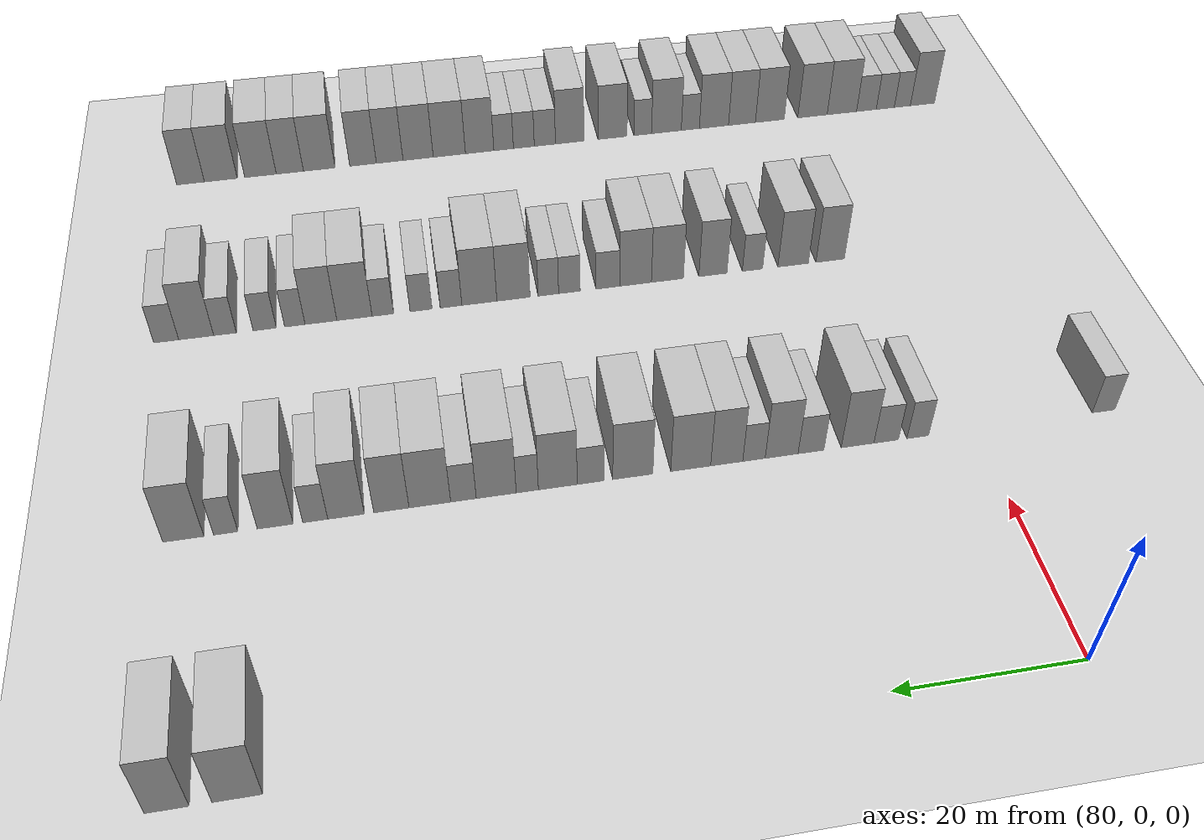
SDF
<sdf version="1.6">
 <world name="default">
  <include>
   <name>ground_plane_2</name>
   <uri>model://HANNAS_ground_plane</uri>
   <pose>100 0 0  0 0 0</pose>
  </include>
  <model name="building_587">
   <static>1</static>
   <pose>85.0000 81.4156 0 0.000000 0.000000 0.000000</pose>
   <link name="link">
    <pose>0 0 4.50 0 0 0</pose>
    <collision name="collision"><geometry><box><size>10.0000 4.4955 9.0000</size></box></geometry></collision>
    <visual name="visual">
     <cast_shadows>0</cast_shadows>
     <geometry><box><size>10.0000 4.4955 9.0000</size></box></geometry>
     <material>
      <script>
       <uri>model://HANNAS_wall/materials/scripts</uri>
       <uri>model://HANNAS_wall/materials/textures</uri>
       <name>vrc/HANNAS_wall</name>
      </script>
     </material>
    </visual>
   </link>
  </model>
  <model name="building_588">
   <static>1</static>
   <pose>85.0000 87.6279 0 0.000000 0.000000 0.000000</pose>
   <link name="link">
    <pose>0 0 4.50 0 0 0</pose>
    <collision name="collision"><geometry><box><size>10.0000 3.9290 9.0000</size></box></geometry></collision>
    <visual name="visual">
     <cast_shadows>0</cast_shadows>
     <geometry><box><size>10.0000 3.9290 9.0000</size></box></geometry>
     <material>
      <script>
       <uri>model://HANNAS_wall/materials/scripts</uri>
       <uri>model://HANNAS_wall/materials/textures</uri>
       <name>vrc/HANNAS_wall</name>
      </script>
     </material>
    </visual>
   </link>
  </model>
  <model name="building_790">
   <static>1</static>
   <pose>115.0000 -15.3438 0 0.000000 0.000000 0.000000</pose>
   <link name="link">
    <pose>0 0 3.00 0 0 0</pose>
    <collision name="collision"><geometry><box><size>10.0000 2.7473 6.0000</size></box></geometry></collision>
    <visual name="visual">
     <cast_shadows>0</cast_shadows>
     <geometry><box><size>10.0000 2.7473 6.0000</size></box></geometry>
     <material>
      <script>
       <uri>model://HANNAS_wall/materials/scripts</uri>
       <uri>model://HANNAS_wall/materials/textures</uri>
       <name>vrc/HANNAS_wall</name>
      </script>
     </material>
    </visual>
   </link>
  </model>
  <model name="building_791">
   <static>1</static>
   <pose>115.0000 6.8169 0 0.000000 0.000000 0.000000</pose>
   <link name="link">
    <pose>0 0 3.00 0 0 0</pose>
    <collision name="collision"><geometry><box><size>10.0000 2.5247 6.0000</size></box></geometry></collision>
    <visual name="visual">
     <cast_shadows>0</cast_shadows>
     <geometry><box><size>10.0000 2.5247 6.0000</size></box></geometry>
     <material>
      <script>
       <uri>model://HANNAS_wall/materials/scripts</uri>
       <uri>model://HANNAS_wall/materials/textures</uri>
       <name>vrc/HANNAS_wall</name>
      </script>
     </material>
    </visual>
   </link>
  </model>
  <model name="building_792">
   <static>1</static>
   <pose>115.0000 10.5102 0 0.000000 0.000000 0.000000</pose>
   <link name="link">
    <pose>0 0 3.00 0 0 0</pose>
    <collision name="collision"><geometry><box><size>10.0000 2.8619 6.0000</size></box></geometry></collision>
    <visual name="visual">
     <cast_shadows>0</cast_shadows>
     <geometry><box><size>10.0000 2.8619 6.0000</size></box></geometry>
     <material>
      <script>
       <uri>model://HANNAS_wall/materials/scripts</uri>
       <uri>model://HANNAS_wall/materials/textures</uri>
       <name>vrc/HANNAS_wall</name>
      </script>
     </material>
    </visual>
   </link>
  </model>
  <model name="building_793">
   <static>1</static>
   <pose>115.0000 13.8330 0 0.000000 0.000000 0.000000</pose>
   <link name="link">
    <pose>0 0 4.50 0 0 0</pose>
    <collision name="collision"><geometry><box><size>10.0000 3.7837 9.0000</size></box></geometry></collision>
    <visual name="visual">
     <cast_shadows>0</cast_shadows>
     <geometry><box><size>10.0000 3.7837 9.0000</size></box></geometry>
     <material>
      <script>
       <uri>model://HANNAS_wall/materials/scripts</uri>
       <uri>model://HANNAS_wall/materials/textures</uri>
       <name>vrc/HANNAS_wall</name>
      </script>
     </material>
    </visual>
   </link>
  </model>
  <model name="building_794">
   <static>1</static>
   <pose>115.0000 19.2060 0 0.000000 0.000000 0.000000</pose>
   <link name="link">
    <pose>0 0 3.00 0 0 0</pose>
    <collision name="collision"><geometry><box><size>10.0000 2.9624 6.0000</size></box></geometry></collision>
    <visual name="visual">
     <cast_shadows>0</cast_shadows>
     <geometry><box><size>10.0000 2.9624 6.0000</size></box></geometry>
     <material>
      <script>
       <uri>model://HANNAS_wall/materials/scripts</uri>
       <uri>model://HANNAS_wall/materials/textures</uri>
       <name>vrc/HANNAS_wall</name>
      </script>
     </material>
    </visual>
   </link>
  </model>
  <model name="building_795">
   <static>1</static>
   <pose>115.0000 22.5663 0 0.000000 0.000000 0.000000</pose>
   <link name="link">
    <pose>0 0 4.50 0 0 0</pose>
    <collision name="collision"><geometry><box><size>10.0000 3.7582 9.0000</size></box></geometry></collision>
    <visual name="visual">
     <cast_shadows>0</cast_shadows>
     <geometry><box><size>10.0000 3.7582 9.0000</size></box></geometry>
     <material>
      <script>
       <uri>model://HANNAS_wall/materials/scripts</uri>
       <uri>model://HANNAS_wall/materials/textures</uri>
       <name>vrc/HANNAS_wall</name>
      </script>
     </material>
    </visual>
   </link>
  </model>
  <model name="building_796">
   <static>1</static>
   <pose>115.0000 25.7191 0 0.000000 0.000000 0.000000</pose>
   <link name="link">
    <pose>0 0 3.00 0 0 0</pose>
    <collision name="collision"><geometry><box><size>10.0000 2.5474 6.0000</size></box></geometry></collision>
    <visual name="visual">
     <cast_shadows>0</cast_shadows>
     <geometry><box><size>10.0000 2.5474 6.0000</size></box></geometry>
     <material>
      <script>
       <uri>model://HANNAS_wall/materials/scripts</uri>
       <uri>model://HANNAS_wall/materials/textures</uri>
       <name>vrc/HANNAS_wall</name>
      </script>
     </material>
    </visual>
   </link>
  </model>
  <model name="building_797">
   <static>1</static>
   <pose>115.0000 28.8067 0 0.000000 0.000000 0.000000</pose>
   <link name="link">
    <pose>0 0 4.50 0 0 0</pose>
    <collision name="collision"><geometry><box><size>10.0000 3.6279 9.0000</size></box></geometry></collision>
    <visual name="visual">
     <cast_shadows>0</cast_shadows>
     <geometry><box><size>10.0000 3.6279 9.0000</size></box></geometry>
     <material>
      <script>
       <uri>model://HANNAS_wall/materials/scripts</uri>
       <uri>model://HANNAS_wall/materials/textures</uri>
       <name>vrc/HANNAS_wall</name>
      </script>
     </material>
    </visual>
   </link>
  </model>
  <model name="building_798">
   <static>1</static>
   <pose>115.0000 32.8637 0 0.000000 0.000000 0.000000</pose>
   <link name="link">
    <pose>0 0 4.50 0 0 0</pose>
    <collision name="collision"><geometry><box><size>10.0000 4.4861 9.0000</size></box></geometry></collision>
    <visual name="visual">
     <cast_shadows>0</cast_shadows>
     <geometry><box><size>10.0000 4.4861 9.0000</size></box></geometry>
     <material>
      <script>
       <uri>model://HANNAS_wall/materials/scripts</uri>
       <uri>model://HANNAS_wall/materials/textures</uri>
       <name>vrc/HANNAS_wall</name>
      </script>
     </material>
    </visual>
   </link>
  </model>
  <model name="building_799">
   <static>1</static>
   <pose>115.0000 39.3338 0 0.000000 0.000000 0.000000</pose>
   <link name="link">
    <pose>0 0 4.50 0 0 0</pose>
    <collision name="collision"><geometry><box><size>10.0000 4.4540 9.0000</size></box></geometry></collision>
    <visual name="visual">
     <cast_shadows>0</cast_shadows>
     <geometry><box><size>10.0000 4.4540 9.0000</size></box></geometry>
     <material>
      <script>
       <uri>model://HANNAS_wall/materials/scripts</uri>
       <uri>model://HANNAS_wall/materials/textures</uri>
       <name>vrc/HANNAS_wall</name>
      </script>
     </material>
    </visual>
   </link>
  </model>
  <model name="building_800">
   <static>1</static>
   <pose>115.0000 44.0183 0 0.000000 0.000000 0.000000</pose>
   <link name="link">
    <pose>0 0 3.00 0 0 0</pose>
    <collision name="collision"><geometry><box><size>10.0000 2.9150 6.0000</size></box></geometry></collision>
    <visual name="visual">
     <cast_shadows>0</cast_shadows>
     <geometry><box><size>10.0000 2.9150 6.0000</size></box></geometry>
     <material>
      <script>
       <uri>model://HANNAS_wall/materials/scripts</uri>
       <uri>model://HANNAS_wall/materials/textures</uri>
       <name>vrc/HANNAS_wall</name>
      </script>
     </material>
    </visual>
   </link>
  </model>
  <model name="building_801">
   <static>1</static>
   <pose>115.0000 47.6013 0 0.000000 0.000000 0.000000</pose>
   <link name="link">
    <pose>0 0 4.50 0 0 0</pose>
    <collision name="collision"><geometry><box><size>10.0000 4.2510 9.0000</size></box></geometry></collision>
    <visual name="visual">
     <cast_shadows>0</cast_shadows>
     <geometry><box><size>10.0000 4.2510 9.0000</size></box></geometry>
     <material>
      <script>
       <uri>model://HANNAS_wall/materials/scripts</uri>
       <uri>model://HANNAS_wall/materials/textures</uri>
       <name>vrc/HANNAS_wall</name>
      </script>
     </material>
    </visual>
   </link>
  </model>
  <model name="building_802">
   <static>1</static>
   <pose>115.0000 50.9356 0 0.000000 0.000000 0.000000</pose>
   <link name="link">
    <pose>0 0 3.00 0 0 0</pose>
    <collision name="collision"><geometry><box><size>10.0000 2.4177 6.0000</size></box></geometry></collision>
    <visual name="visual">
     <cast_shadows>0</cast_shadows>
     <geometry><box><size>10.0000 2.4177 6.0000</size></box></geometry>
     <material>
      <script>
       <uri>model://HANNAS_wall/materials/scripts</uri>
       <uri>model://HANNAS_wall/materials/textures</uri>
       <name>vrc/HANNAS_wall</name>
      </script>
     </material>
    </visual>
   </link>
  </model>
  <model name="building_803">
   <static>1</static>
   <pose>115.0000 54.3118 0 0.000000 0.000000 0.000000</pose>
   <link name="link">
    <pose>0 0 4.50 0 0 0</pose>
    <collision name="collision"><geometry><box><size>10.0000 4.3348 9.0000</size></box></geometry></collision>
    <visual name="visual">
     <cast_shadows>0</cast_shadows>
     <geometry><box><size>10.0000 4.3348 9.0000</size></box></geometry>
     <material>
      <script>
       <uri>model://HANNAS_wall/materials/scripts</uri>
       <uri>model://HANNAS_wall/materials/textures</uri>
       <name>vrc/HANNAS_wall</name>
      </script>
     </material>
    </visual>
   </link>
  </model>
  <model name="building_804">
   <static>1</static>
   <pose>115.0000 57.8555 0 0.000000 0.000000 0.000000</pose>
   <link name="link">
    <pose>0 0 3.00 0 0 0</pose>
    <collision name="collision"><geometry><box><size>10.0000 2.7526 6.0000</size></box></geometry></collision>
    <visual name="visual">
     <cast_shadows>0</cast_shadows>
     <geometry><box><size>10.0000 2.7526 6.0000</size></box></geometry>
     <material>
      <script>
       <uri>model://HANNAS_wall/materials/scripts</uri>
       <uri>model://HANNAS_wall/materials/textures</uri>
       <name>vrc/HANNAS_wall</name>
      </script>
     </material>
    </visual>
   </link>
  </model>
  <model name="building_805">
   <static>1</static>
   <pose>115.0000 61.4580 0 0.000000 0.000000 0.000000</pose>
   <link name="link">
    <pose>0 0 4.50 0 0 0</pose>
    <collision name="collision"><geometry><box><size>10.0000 4.4525 9.0000</size></box></geometry></collision>
    <visual name="visual">
     <cast_shadows>0</cast_shadows>
     <geometry><box><size>10.0000 4.4525 9.0000</size></box></geometry>
     <material>
      <script>
       <uri>model://HANNAS_wall/materials/scripts</uri>
       <uri>model://HANNAS_wall/materials/textures</uri>
       <name>vrc/HANNAS_wall</name>
      </script>
     </material>
    </visual>
   </link>
  </model>
  <model name="building_806">
   <static>1</static>
   <pose>115.0000 65.5646 0 0.000000 0.000000 0.000000</pose>
   <link name="link">
    <pose>0 0 4.50 0 0 0</pose>
    <collision name="collision"><geometry><box><size>10.0000 3.7605 9.0000</size></box></geometry></collision>
    <visual name="visual">
     <cast_shadows>0</cast_shadows>
     <geometry><box><size>10.0000 3.7605 9.0000</size></box></geometry>
     <material>
      <script>
       <uri>model://HANNAS_wall/materials/scripts</uri>
       <uri>model://HANNAS_wall/materials/textures</uri>
       <name>vrc/HANNAS_wall</name>
      </script>
     </material>
    </visual>
   </link>
  </model>
  <model name="building_807">
   <static>1</static>
   <pose>115.0000 70.3710 0 0.000000 0.000000 0.000000</pose>
   <link name="link">
    <pose>0 0 4.50 0 0 0</pose>
    <collision name="collision"><geometry><box><size>10.0000 3.8524 9.0000</size></box></geometry></collision>
    <visual name="visual">
     <cast_shadows>0</cast_shadows>
     <geometry><box><size>10.0000 3.8524 9.0000</size></box></geometry>
     <material>
      <script>
       <uri>model://HANNAS_wall/materials/scripts</uri>
       <uri>model://HANNAS_wall/materials/textures</uri>
       <name>vrc/HANNAS_wall</name>
      </script>
     </material>
    </visual>
   </link>
  </model>
  <model name="building_808">
   <static>1</static>
   <pose>115.0000 73.6086 0 0.000000 0.000000 0.000000</pose>
   <link name="link">
    <pose>0 0 3.00 0 0 0</pose>
    <collision name="collision"><geometry><box><size>10.0000 2.6227 6.0000</size></box></geometry></collision>
    <visual name="visual">
     <cast_shadows>0</cast_shadows>
     <geometry><box><size>10.0000 2.6227 6.0000</size></box></geometry>
     <material>
      <script>
       <uri>model://HANNAS_wall/materials/scripts</uri>
       <uri>model://HANNAS_wall/materials/textures</uri>
       <name>vrc/HANNAS_wall</name>
      </script>
     </material>
    </visual>
   </link>
  </model>
  <model name="building_809">
   <static>1</static>
   <pose>115.0000 77.7968 0 0.000000 0.000000 0.000000</pose>
   <link name="link">
    <pose>0 0 4.50 0 0 0</pose>
    <collision name="collision"><geometry><box><size>10.0000 3.7538 9.0000</size></box></geometry></collision>
    <visual name="visual">
     <cast_shadows>0</cast_shadows>
     <geometry><box><size>10.0000 3.7538 9.0000</size></box></geometry>
     <material>
      <script>
       <uri>model://HANNAS_wall/materials/scripts</uri>
       <uri>model://HANNAS_wall/materials/textures</uri>
       <name>vrc/HANNAS_wall</name>
      </script>
     </material>
    </visual>
   </link>
  </model>
  <model name="building_810">
   <static>1</static>
   <pose>115.0000 82.9287 0 0.000000 0.000000 0.000000</pose>
   <link name="link">
    <pose>0 0 3.00 0 0 0</pose>
    <collision name="collision"><geometry><box><size>10.0000 2.5099 6.0000</size></box></geometry></collision>
    <visual name="visual">
     <cast_shadows>0</cast_shadows>
     <geometry><box><size>10.0000 2.5099 6.0000</size></box></geometry>
     <material>
      <script>
       <uri>model://HANNAS_wall/materials/scripts</uri>
       <uri>model://HANNAS_wall/materials/textures</uri>
       <name>vrc/HANNAS_wall</name>
      </script>
     </material>
    </visual>
   </link>
  </model>
  <model name="building_811">
   <static>1</static>
   <pose>115.0000 87.2918 0 0.000000 0.000000 0.000000</pose>
   <link name="link">
    <pose>0 0 4.50 0 0 0</pose>
    <collision name="collision"><geometry><box><size>10.0000 4.2163 9.0000</size></box></geometry></collision>
    <visual name="visual">
     <cast_shadows>0</cast_shadows>
     <geometry><box><size>10.0000 4.2163 9.0000</size></box></geometry>
     <material>
      <script>
       <uri>model://HANNAS_wall/materials/scripts</uri>
       <uri>model://HANNAS_wall/materials/textures</uri>
       <name>vrc/HANNAS_wall</name>
      </script>
     </material>
    </visual>
   </link>
  </model>
  <model name="building_1016">
   <static>1</static>
   <pose>145.0000 7.9326 0 0.000000 0.000000 0.000000</pose>
   <link name="link">
    <pose>0 0 4.50 0 0 0</pose>
    <collision name="collision"><geometry><box><size>10.0000 3.7357 9.0000</size></box></geometry></collision>
    <visual name="visual">
     <cast_shadows>0</cast_shadows>
     <geometry><box><size>10.0000 3.7357 9.0000</size></box></geometry>
     <material>
      <script>
       <uri>model://HANNAS_wall/materials/scripts</uri>
       <uri>model://HANNAS_wall/materials/textures</uri>
       <name>vrc/HANNAS_wall</name>
      </script>
     </material>
    </visual>
   </link>
  </model>
  <model name="building_1017">
   <static>1</static>
   <pose>145.0000 12.7913 0 0.000000 0.000000 0.000000</pose>
   <link name="link">
    <pose>0 0 4.50 0 0 0</pose>
    <collision name="collision"><geometry><box><size>10.0000 3.9818 9.0000</size></box></geometry></collision>
    <visual name="visual">
     <cast_shadows>0</cast_shadows>
     <geometry><box><size>10.0000 3.9818 9.0000</size></box></geometry>
     <material>
      <script>
       <uri>model://HANNAS_wall/materials/scripts</uri>
       <uri>model://HANNAS_wall/materials/textures</uri>
       <name>vrc/HANNAS_wall</name>
      </script>
     </material>
    </visual>
   </link>
  </model>
  <model name="building_1018">
   <static>1</static>
   <pose>145.0000 18.0989 0 0.000000 0.000000 0.000000</pose>
   <link name="link">
    <pose>0 0 3.00 0 0 0</pose>
    <collision name="collision"><geometry><box><size>10.0000 2.6332 6.0000</size></box></geometry></collision>
    <visual name="visual">
     <cast_shadows>0</cast_shadows>
     <geometry><box><size>10.0000 2.6332 6.0000</size></box></geometry>
     <material>
      <script>
       <uri>model://HANNAS_wall/materials/scripts</uri>
       <uri>model://HANNAS_wall/materials/textures</uri>
       <name>vrc/HANNAS_wall</name>
      </script>
     </material>
    </visual>
   </link>
  </model>
  <model name="building_1019">
   <static>1</static>
   <pose>145.0000 23.2291 0 0.000000 0.000000 0.000000</pose>
   <link name="link">
    <pose>0 0 4.50 0 0 0</pose>
    <collision name="collision"><geometry><box><size>10.0000 3.6272 9.0000</size></box></geometry></collision>
    <visual name="visual">
     <cast_shadows>0</cast_shadows>
     <geometry><box><size>10.0000 3.6272 9.0000</size></box></geometry>
     <material>
      <script>
       <uri>model://HANNAS_wall/materials/scripts</uri>
       <uri>model://HANNAS_wall/materials/textures</uri>
       <name>vrc/HANNAS_wall</name>
      </script>
     </material>
    </visual>
   </link>
  </model>
  <model name="building_1020">
   <static>1</static>
   <pose>145.0000 29.0852 0 0.000000 0.000000 0.000000</pose>
   <link name="link">
    <pose>0 0 4.50 0 0 0</pose>
    <collision name="collision"><geometry><box><size>10.0000 4.0850 9.0000</size></box></geometry></collision>
    <visual name="visual">
     <cast_shadows>0</cast_shadows>
     <geometry><box><size>10.0000 4.0850 9.0000</size></box></geometry>
     <material>
      <script>
       <uri>model://HANNAS_wall/materials/scripts</uri>
       <uri>model://HANNAS_wall/materials/textures</uri>
       <name>vrc/HANNAS_wall</name>
      </script>
     </material>
    </visual>
   </link>
  </model>
  <model name="building_1021">
   <static>1</static>
   <pose>145.0000 33.1491 0 0.000000 0.000000 0.000000</pose>
   <link name="link">
    <pose>0 0 4.50 0 0 0</pose>
    <collision name="collision"><geometry><box><size>10.0000 4.0427 9.0000</size></box></geometry></collision>
    <visual name="visual">
     <cast_shadows>0</cast_shadows>
     <geometry><box><size>10.0000 4.0427 9.0000</size></box></geometry>
     <material>
      <script>
       <uri>model://HANNAS_wall/materials/scripts</uri>
       <uri>model://HANNAS_wall/materials/textures</uri>
       <name>vrc/HANNAS_wall</name>
      </script>
     </material>
    </visual>
   </link>
  </model>
  <model name="building_1022">
   <static>1</static>
   <pose>145.0000 36.6633 0 0.000000 0.000000 0.000000</pose>
   <link name="link">
    <pose>0 0 3.00 0 0 0</pose>
    <collision name="collision"><geometry><box><size>10.0000 2.9857 6.0000</size></box></geometry></collision>
    <visual name="visual">
     <cast_shadows>0</cast_shadows>
     <geometry><box><size>10.0000 2.9857 6.0000</size></box></geometry>
     <material>
      <script>
       <uri>model://HANNAS_wall/materials/scripts</uri>
       <uri>model://HANNAS_wall/materials/textures</uri>
       <name>vrc/HANNAS_wall</name>
      </script>
     </material>
    </visual>
   </link>
  </model>
  <model name="building_1023">
   <static>1</static>
   <pose>145.0000 41.5149 0 0.000000 0.000000 0.000000</pose>
   <link name="link">
    <pose>0 0 3.00 0 0 0</pose>
    <collision name="collision"><geometry><box><size>10.0000 2.7175 6.0000</size></box></geometry></collision>
    <visual name="visual">
     <cast_shadows>0</cast_shadows>
     <geometry><box><size>10.0000 2.7175 6.0000</size></box></geometry>
     <material>
      <script>
       <uri>model://HANNAS_wall/materials/scripts</uri>
       <uri>model://HANNAS_wall/materials/textures</uri>
       <name>vrc/HANNAS_wall</name>
      </script>
     </material>
    </visual>
   </link>
  </model>
  <model name="building_1024">
   <static>1</static>
   <pose>145.0000 44.1549 0 0.000000 0.000000 0.000000</pose>
   <link name="link">
    <pose>0 0 3.00 0 0 0</pose>
    <collision name="collision"><geometry><box><size>10.0000 2.5625 6.0000</size></box></geometry></collision>
    <visual name="visual">
     <cast_shadows>0</cast_shadows>
     <geometry><box><size>10.0000 2.5625 6.0000</size></box></geometry>
     <material>
      <script>
       <uri>model://HANNAS_wall/materials/scripts</uri>
       <uri>model://HANNAS_wall/materials/textures</uri>
       <name>vrc/HANNAS_wall</name>
      </script>
     </material>
    </visual>
   </link>
  </model>
  <model name="building_1025">
   <static>1</static>
   <pose>145.0000 48.5039 0 0.000000 0.000000 0.000000</pose>
   <link name="link">
    <pose>0 0 4.50 0 0 0</pose>
    <collision name="collision"><geometry><box><size>10.0000 4.1353 9.0000</size></box></geometry></collision>
    <visual name="visual">
     <cast_shadows>0</cast_shadows>
     <geometry><box><size>10.0000 4.1353 9.0000</size></box></geometry>
     <material>
      <script>
       <uri>model://HANNAS_wall/materials/scripts</uri>
       <uri>model://HANNAS_wall/materials/textures</uri>
       <name>vrc/HANNAS_wall</name>
      </script>
     </material>
    </visual>
   </link>
  </model>
  <model name="building_1026">
   <static>1</static>
   <pose>145.0000 52.7390 0 0.000000 0.000000 0.000000</pose>
   <link name="link">
    <pose>0 0 4.50 0 0 0</pose>
    <collision name="collision"><geometry><box><size>10.0000 4.3350 9.0000</size></box></geometry></collision>
    <visual name="visual">
     <cast_shadows>0</cast_shadows>
     <geometry><box><size>10.0000 4.3350 9.0000</size></box></geometry>
     <material>
      <script>
       <uri>model://HANNAS_wall/materials/scripts</uri>
       <uri>model://HANNAS_wall/materials/textures</uri>
       <name>vrc/HANNAS_wall</name>
      </script>
     </material>
    </visual>
   </link>
  </model>
  <model name="building_1027">
   <static>1</static>
   <pose>145.0000 56.2368 0 0.000000 0.000000 0.000000</pose>
   <link name="link">
    <pose>0 0 3.00 0 0 0</pose>
    <collision name="collision"><geometry><box><size>10.0000 2.6606 6.0000</size></box></geometry></collision>
    <visual name="visual">
     <cast_shadows>0</cast_shadows>
     <geometry><box><size>10.0000 2.6606 6.0000</size></box></geometry>
     <material>
      <script>
       <uri>model://HANNAS_wall/materials/scripts</uri>
       <uri>model://HANNAS_wall/materials/textures</uri>
       <name>vrc/HANNAS_wall</name>
      </script>
     </material>
    </visual>
   </link>
  </model>
  <model name="building_1028">
   <static>1</static>
   <pose>145.0000 59.9145 0 0.000000 0.000000 0.000000</pose>
   <link name="link">
    <pose>0 0 3.00 0 0 0</pose>
    <collision name="collision"><geometry><box><size>10.0000 2.6948 6.0000</size></box></geometry></collision>
    <visual name="visual">
     <cast_shadows>0</cast_shadows>
     <geometry><box><size>10.0000 2.6948 6.0000</size></box></geometry>
     <material>
      <script>
       <uri>model://HANNAS_wall/materials/scripts</uri>
       <uri>model://HANNAS_wall/materials/textures</uri>
       <name>vrc/HANNAS_wall</name>
      </script>
     </material>
    </visual>
   </link>
  </model>
  <model name="building_1029">
   <static>1</static>
   <pose>145.0000 64.5692 0 0.000000 0.000000 0.000000</pose>
   <link name="link">
    <pose>0 0 3.00 0 0 0</pose>
    <collision name="collision"><geometry><box><size>10.0000 2.6145 6.0000</size></box></geometry></collision>
    <visual name="visual">
     <cast_shadows>0</cast_shadows>
     <geometry><box><size>10.0000 2.6145 6.0000</size></box></geometry>
     <material>
      <script>
       <uri>model://HANNAS_wall/materials/scripts</uri>
       <uri>model://HANNAS_wall/materials/textures</uri>
       <name>vrc/HANNAS_wall</name>
      </script>
     </material>
    </visual>
   </link>
  </model>
  <model name="building_1030">
   <static>1</static>
   <pose>145.0000 68.0118 0 0.000000 0.000000 0.000000</pose>
   <link name="link">
    <pose>0 0 4.50 0 0 0</pose>
    <collision name="collision"><geometry><box><size>10.0000 4.2708 9.0000</size></box></geometry></collision>
    <visual name="visual">
     <cast_shadows>0</cast_shadows>
     <geometry><box><size>10.0000 4.2708 9.0000</size></box></geometry>
     <material>
      <script>
       <uri>model://HANNAS_wall/materials/scripts</uri>
       <uri>model://HANNAS_wall/materials/textures</uri>
       <name>vrc/HANNAS_wall</name>
      </script>
     </material>
    </visual>
   </link>
  </model>
  <model name="building_1031">
   <static>1</static>
   <pose>145.0000 72.0624 0 0.000000 0.000000 0.000000</pose>
   <link name="link">
    <pose>0 0 4.50 0 0 0</pose>
    <collision name="collision"><geometry><box><size>10.0000 3.8306 9.0000</size></box></geometry></collision>
    <visual name="visual">
     <cast_shadows>0</cast_shadows>
     <geometry><box><size>10.0000 3.8306 9.0000</size></box></geometry>
     <material>
      <script>
       <uri>model://HANNAS_wall/materials/scripts</uri>
       <uri>model://HANNAS_wall/materials/textures</uri>
       <name>vrc/HANNAS_wall</name>
      </script>
     </material>
    </visual>
   </link>
  </model>
  <model name="building_1032">
   <static>1</static>
   <pose>145.0000 75.1957 0 0.000000 0.000000 0.000000</pose>
   <link name="link">
    <pose>0 0 3.00 0 0 0</pose>
    <collision name="collision"><geometry><box><size>10.0000 2.4360 6.0000</size></box></geometry></collision>
    <visual name="visual">
     <cast_shadows>0</cast_shadows>
     <geometry><box><size>10.0000 2.4360 6.0000</size></box></geometry>
     <material>
      <script>
       <uri>model://HANNAS_wall/materials/scripts</uri>
       <uri>model://HANNAS_wall/materials/textures</uri>
       <name>vrc/HANNAS_wall</name>
      </script>
     </material>
    </visual>
   </link>
  </model>
  <model name="building_1033">
   <static>1</static>
   <pose>145.0000 78.7912 0 0.000000 0.000000 0.000000</pose>
   <link name="link">
    <pose>0 0 3.00 0 0 0</pose>
    <collision name="collision"><geometry><box><size>10.0000 2.7550 6.0000</size></box></geometry></collision>
    <visual name="visual">
     <cast_shadows>0</cast_shadows>
     <geometry><box><size>10.0000 2.7550 6.0000</size></box></geometry>
     <material>
      <script>
       <uri>model://HANNAS_wall/materials/scripts</uri>
       <uri>model://HANNAS_wall/materials/textures</uri>
       <name>vrc/HANNAS_wall</name>
      </script>
     </material>
    </visual>
   </link>
  </model>
  <model name="building_1034">
   <static>1</static>
   <pose>145.0000 83.5082 0 0.000000 0.000000 0.000000</pose>
   <link name="link">
    <pose>0 0 3.00 0 0 0</pose>
    <collision name="collision"><geometry><box><size>10.0000 2.6788 6.0000</size></box></geometry></collision>
    <visual name="visual">
     <cast_shadows>0</cast_shadows>
     <geometry><box><size>10.0000 2.6788 6.0000</size></box></geometry>
     <material>
      <script>
       <uri>model://HANNAS_wall/materials/scripts</uri>
       <uri>model://HANNAS_wall/materials/textures</uri>
       <name>vrc/HANNAS_wall</name>
      </script>
     </material>
    </visual>
   </link>
  </model>
  <model name="building_1035">
   <static>1</static>
   <pose>145.0000 86.9028 0 0.000000 0.000000 0.000000</pose>
   <link name="link">
    <pose>0 0 4.50 0 0 0</pose>
    <collision name="collision"><geometry><box><size>10.0000 4.1105 9.0000</size></box></geometry></collision>
    <visual name="visual">
     <cast_shadows>0</cast_shadows>
     <geometry><box><size>10.0000 4.1105 9.0000</size></box></geometry>
     <material>
      <script>
       <uri>model://HANNAS_wall/materials/scripts</uri>
       <uri>model://HANNAS_wall/materials/textures</uri>
       <name>vrc/HANNAS_wall</name>
      </script>
     </material>
    </visual>
   </link>
  </model>
  <model name="building_1036">
   <static>1</static>
   <pose>145.0000 90.4175 0 0.000000 0.000000 0.000000</pose>
   <link name="link">
    <pose>0 0 3.00 0 0 0</pose>
    <collision name="collision"><geometry><box><size>10.0000 2.9189 6.0000</size></box></geometry></collision>
    <visual name="visual">
     <cast_shadows>0</cast_shadows>
     <geometry><box><size>10.0000 2.9189 6.0000</size></box></geometry>
     <material>
      <script>
       <uri>model://HANNAS_wall/materials/scripts</uri>
       <uri>model://HANNAS_wall/materials/textures</uri>
       <name>vrc/HANNAS_wall</name>
      </script>
     </material>
    </visual>
   </link>
  </model>
  <model name="building_1242">
   <static>1</static>
   <pose>175.0000 -14.9835 0 0.000000 0.000000 0.000000</pose>
   <link name="link">
    <pose>0 0 4.50 0 0 0</pose>
    <collision name="collision"><geometry><box><size>10.0000 3.6416 9.0000</size></box></geometry></collision>
    <visual name="visual">
     <cast_shadows>0</cast_shadows>
     <geometry><box><size>10.0000 3.6416 9.0000</size></box></geometry>
     <material>
      <script>
       <uri>model://HANNAS_wall/materials/scripts</uri>
       <uri>model://HANNAS_wall/materials/textures</uri>
       <name>vrc/HANNAS_wall</name>
      </script>
     </material>
    </visual>
   </link>
  </model>
  <model name="building_1243">
   <static>1</static>
   <pose>175.0000 -11.9542 0 0.000000 0.000000 0.000000</pose>
   <link name="link">
    <pose>0 0 3.00 0 0 0</pose>
    <collision name="collision"><geometry><box><size>10.0000 2.4171 6.0000</size></box></geometry></collision>
    <visual name="visual">
     <cast_shadows>0</cast_shadows>
     <geometry><box><size>10.0000 2.4171 6.0000</size></box></geometry>
     <material>
      <script>
       <uri>model://HANNAS_wall/materials/scripts</uri>
       <uri>model://HANNAS_wall/materials/textures</uri>
       <name>vrc/HANNAS_wall</name>
      </script>
     </material>
    </visual>
   </link>
  </model>
  <model name="building_1244">
   <static>1</static>
   <pose>175.0000 -9.3946 0 0.000000 0.000000 0.000000</pose>
   <link name="link">
    <pose>0 0 3.00 0 0 0</pose>
    <collision name="collision"><geometry><box><size>10.0000 2.7022 6.0000</size></box></geometry></collision>
    <visual name="visual">
     <cast_shadows>0</cast_shadows>
     <geometry><box><size>10.0000 2.7022 6.0000</size></box></geometry>
     <material>
      <script>
       <uri>model://HANNAS_wall/materials/scripts</uri>
       <uri>model://HANNAS_wall/materials/textures</uri>
       <name>vrc/HANNAS_wall</name>
      </script>
     </material>
    </visual>
   </link>
  </model>
  <model name="building_1245">
   <static>1</static>
   <pose>175.0000 -6.5691 0 0.000000 0.000000 0.000000</pose>
   <link name="link">
    <pose>0 0 3.00 0 0 0</pose>
    <collision name="collision"><geometry><box><size>10.0000 2.9487 6.0000</size></box></geometry></collision>
    <visual name="visual">
     <cast_shadows>0</cast_shadows>
     <geometry><box><size>10.0000 2.9487 6.0000</size></box></geometry>
     <material>
      <script>
       <uri>model://HANNAS_wall/materials/scripts</uri>
       <uri>model://HANNAS_wall/materials/textures</uri>
       <name>vrc/HANNAS_wall</name>
      </script>
     </material>
    </visual>
   </link>
  </model>
  <model name="building_1246">
   <static>1</static>
   <pose>175.0000 -2.9008 0 0.000000 0.000000 0.000000</pose>
   <link name="link">
    <pose>0 0 4.50 0 0 0</pose>
    <collision name="collision"><geometry><box><size>10.0000 4.3878 9.0000</size></box></geometry></collision>
    <visual name="visual">
     <cast_shadows>0</cast_shadows>
     <geometry><box><size>10.0000 4.3878 9.0000</size></box></geometry>
     <material>
      <script>
       <uri>model://HANNAS_wall/materials/scripts</uri>
       <uri>model://HANNAS_wall/materials/textures</uri>
       <name>vrc/HANNAS_wall</name>
      </script>
     </material>
    </visual>
   </link>
  </model>
  <model name="building_1247">
   <static>1</static>
   <pose>175.0000 1.4730 0 0.000000 0.000000 0.000000</pose>
   <link name="link">
    <pose>0 0 4.50 0 0 0</pose>
    <collision name="collision"><geometry><box><size>10.0000 4.3600 9.0000</size></box></geometry></collision>
    <visual name="visual">
     <cast_shadows>0</cast_shadows>
     <geometry><box><size>10.0000 4.3600 9.0000</size></box></geometry>
     <material>
      <script>
       <uri>model://HANNAS_wall/materials/scripts</uri>
       <uri>model://HANNAS_wall/materials/textures</uri>
       <name>vrc/HANNAS_wall</name>
      </script>
     </material>
    </visual>
   </link>
  </model>
  <model name="building_1248">
   <static>1</static>
   <pose>175.0000 7.7674 0 0.000000 0.000000 0.000000</pose>
   <link name="link">
    <pose>0 0 4.50 0 0 0</pose>
    <collision name="collision"><geometry><box><size>10.0000 4.2287 9.0000</size></box></geometry></collision>
    <visual name="visual">
     <cast_shadows>0</cast_shadows>
     <geometry><box><size>10.0000 4.2287 9.0000</size></box></geometry>
     <material>
      <script>
       <uri>model://HANNAS_wall/materials/scripts</uri>
       <uri>model://HANNAS_wall/materials/textures</uri>
       <name>vrc/HANNAS_wall</name>
      </script>
     </material>
    </visual>
   </link>
  </model>
  <model name="building_1249">
   <static>1</static>
   <pose>175.0000 11.8515 0 0.000000 0.000000 0.000000</pose>
   <link name="link">
    <pose>0 0 4.50 0 0 0</pose>
    <collision name="collision"><geometry><box><size>10.0000 3.9395 9.0000</size></box></geometry></collision>
    <visual name="visual">
     <cast_shadows>0</cast_shadows>
     <geometry><box><size>10.0000 3.9395 9.0000</size></box></geometry>
     <material>
      <script>
       <uri>model://HANNAS_wall/materials/scripts</uri>
       <uri>model://HANNAS_wall/materials/textures</uri>
       <name>vrc/HANNAS_wall</name>
      </script>
     </material>
    </visual>
   </link>
  </model>
  <model name="building_1250">
   <static>1</static>
   <pose>175.0000 15.9439 0 0.000000 0.000000 0.000000</pose>
   <link name="link">
    <pose>0 0 4.50 0 0 0</pose>
    <collision name="collision"><geometry><box><size>10.0000 4.2452 9.0000</size></box></geometry></collision>
    <visual name="visual">
     <cast_shadows>0</cast_shadows>
     <geometry><box><size>10.0000 4.2452 9.0000</size></box></geometry>
     <material>
      <script>
       <uri>model://HANNAS_wall/materials/scripts</uri>
       <uri>model://HANNAS_wall/materials/textures</uri>
       <name>vrc/HANNAS_wall</name>
      </script>
     </material>
    </visual>
   </link>
  </model>
  <model name="building_1251">
   <static>1</static>
   <pose>175.0000 19.3753 0 0.000000 0.000000 0.000000</pose>
   <link name="link">
    <pose>0 0 3.00 0 0 0</pose>
    <collision name="collision"><geometry><box><size>10.0000 2.6178 6.0000</size></box></geometry></collision>
    <visual name="visual">
     <cast_shadows>0</cast_shadows>
     <geometry><box><size>10.0000 2.6178 6.0000</size></box></geometry>
     <material>
      <script>
       <uri>model://HANNAS_wall/materials/scripts</uri>
       <uri>model://HANNAS_wall/materials/textures</uri>
       <name>vrc/HANNAS_wall</name>
      </script>
     </material>
    </visual>
   </link>
  </model>
  <model name="building_1252">
   <static>1</static>
   <pose>175.0000 22.8348 0 0.000000 0.000000 0.000000</pose>
   <link name="link">
    <pose>0 0 4.50 0 0 0</pose>
    <collision name="collision"><geometry><box><size>10.0000 4.3011 9.0000</size></box></geometry></collision>
    <visual name="visual">
     <cast_shadows>0</cast_shadows>
     <geometry><box><size>10.0000 4.3011 9.0000</size></box></geometry>
     <material>
      <script>
       <uri>model://HANNAS_wall/materials/scripts</uri>
       <uri>model://HANNAS_wall/materials/textures</uri>
       <name>vrc/HANNAS_wall</name>
      </script>
     </material>
    </visual>
   </link>
  </model>
  <model name="building_1253">
   <static>1</static>
   <pose>175.0000 26.2444 0 0.000000 0.000000 0.000000</pose>
   <link name="link">
    <pose>0 0 3.00 0 0 0</pose>
    <collision name="collision"><geometry><box><size>10.0000 2.5180 6.0000</size></box></geometry></collision>
    <visual name="visual">
     <cast_shadows>0</cast_shadows>
     <geometry><box><size>10.0000 2.5180 6.0000</size></box></geometry>
     <material>
      <script>
       <uri>model://HANNAS_wall/materials/scripts</uri>
       <uri>model://HANNAS_wall/materials/textures</uri>
       <name>vrc/HANNAS_wall</name>
      </script>
     </material>
    </visual>
   </link>
  </model>
  <model name="building_1254">
   <static>1</static>
   <pose>175.0000 30.5732 0 0.000000 0.000000 0.000000</pose>
   <link name="link">
    <pose>0 0 4.50 0 0 0</pose>
    <collision name="collision"><geometry><box><size>10.0000 4.1396 9.0000</size></box></geometry></collision>
    <visual name="visual">
     <cast_shadows>0</cast_shadows>
     <geometry><box><size>10.0000 4.1396 9.0000</size></box></geometry>
     <material>
      <script>
       <uri>model://HANNAS_wall/materials/scripts</uri>
       <uri>model://HANNAS_wall/materials/textures</uri>
       <name>vrc/HANNAS_wall</name>
      </script>
     </material>
    </visual>
   </link>
  </model>
  <model name="building_1255">
   <static>1</static>
   <pose>175.0000 36.6541 0 0.000000 0.000000 0.000000</pose>
   <link name="link">
    <pose>0 0 4.50 0 0 0</pose>
    <collision name="collision"><geometry><box><size>10.0000 4.0221 9.0000</size></box></geometry></collision>
    <visual name="visual">
     <cast_shadows>0</cast_shadows>
     <geometry><box><size>10.0000 4.0221 9.0000</size></box></geometry>
     <material>
      <script>
       <uri>model://HANNAS_wall/materials/scripts</uri>
       <uri>model://HANNAS_wall/materials/textures</uri>
       <name>vrc/HANNAS_wall</name>
      </script>
     </material>
    </visual>
   </link>
  </model>
  <model name="building_1256">
   <static>1</static>
   <pose>175.0000 40.1575 0 0.000000 0.000000 0.000000</pose>
   <link name="link">
    <pose>0 0 3.00 0 0 0</pose>
    <collision name="collision"><geometry><box><size>10.0000 2.9847 6.0000</size></box></geometry></collision>
    <visual name="visual">
     <cast_shadows>0</cast_shadows>
     <geometry><box><size>10.0000 2.9847 6.0000</size></box></geometry>
     <material>
      <script>
       <uri>model://HANNAS_wall/materials/scripts</uri>
       <uri>model://HANNAS_wall/materials/textures</uri>
       <name>vrc/HANNAS_wall</name>
      </script>
     </material>
    </visual>
   </link>
  </model>
  <model name="building_1257">
   <static>1</static>
   <pose>175.0000 43.1165 0 0.000000 0.000000 0.000000</pose>
   <link name="link">
    <pose>0 0 3.00 0 0 0</pose>
    <collision name="collision"><geometry><box><size>10.0000 2.9333 6.0000</size></box></geometry></collision>
    <visual name="visual">
     <cast_shadows>0</cast_shadows>
     <geometry><box><size>10.0000 2.9333 6.0000</size></box></geometry>
     <material>
      <script>
       <uri>model://HANNAS_wall/materials/scripts</uri>
       <uri>model://HANNAS_wall/materials/textures</uri>
       <name>vrc/HANNAS_wall</name>
      </script>
     </material>
    </visual>
   </link>
  </model>
  <model name="building_1258">
   <static>1</static>
   <pose>175.0000 45.9522 0 0.000000 0.000000 0.000000</pose>
   <link name="link">
    <pose>0 0 3.00 0 0 0</pose>
    <collision name="collision"><geometry><box><size>10.0000 2.7380 6.0000</size></box></geometry></collision>
    <visual name="visual">
     <cast_shadows>0</cast_shadows>
     <geometry><box><size>10.0000 2.7380 6.0000</size></box></geometry>
     <material>
      <script>
       <uri>model://HANNAS_wall/materials/scripts</uri>
       <uri>model://HANNAS_wall/materials/textures</uri>
       <name>vrc/HANNAS_wall</name>
      </script>
     </material>
    </visual>
   </link>
  </model>
  <model name="building_1259">
   <static>1</static>
   <pose>175.0000 49.3017 0 0.000000 0.000000 0.000000</pose>
   <link name="link">
    <pose>0 0 4.50 0 0 0</pose>
    <collision name="collision"><geometry><box><size>10.0000 3.9610 9.0000</size></box></geometry></collision>
    <visual name="visual">
     <cast_shadows>0</cast_shadows>
     <geometry><box><size>10.0000 3.9610 9.0000</size></box></geometry>
     <material>
      <script>
       <uri>model://HANNAS_wall/materials/scripts</uri>
       <uri>model://HANNAS_wall/materials/textures</uri>
       <name>vrc/HANNAS_wall</name>
      </script>
     </material>
    </visual>
   </link>
  </model>
  <model name="building_1260">
   <static>1</static>
   <pose>175.0000 53.5136 0 0.000000 0.000000 0.000000</pose>
   <link name="link">
    <pose>0 0 4.50 0 0 0</pose>
    <collision name="collision"><geometry><box><size>10.0000 4.4629 9.0000</size></box></geometry></collision>
    <visual name="visual">
     <cast_shadows>0</cast_shadows>
     <geometry><box><size>10.0000 4.4629 9.0000</size></box></geometry>
     <material>
      <script>
       <uri>model://HANNAS_wall/materials/scripts</uri>
       <uri>model://HANNAS_wall/materials/textures</uri>
       <name>vrc/HANNAS_wall</name>
      </script>
     </material>
    </visual>
   </link>
  </model>
  <model name="building_1261">
   <static>1</static>
   <pose>175.0000 57.8270 0 0.000000 0.000000 0.000000</pose>
   <link name="link">
    <pose>0 0 4.50 0 0 0</pose>
    <collision name="collision"><geometry><box><size>10.0000 4.1639 9.0000</size></box></geometry></collision>
    <visual name="visual">
     <cast_shadows>0</cast_shadows>
     <geometry><box><size>10.0000 4.1639 9.0000</size></box></geometry>
     <material>
      <script>
       <uri>model://HANNAS_wall/materials/scripts</uri>
       <uri>model://HANNAS_wall/materials/textures</uri>
       <name>vrc/HANNAS_wall</name>
      </script>
     </material>
    </visual>
   </link>
  </model>
  <model name="building_1262">
   <static>1</static>
   <pose>175.0000 61.7364 0 0.000000 0.000000 0.000000</pose>
   <link name="link">
    <pose>0 0 4.50 0 0 0</pose>
    <collision name="collision"><geometry><box><size>10.0000 3.6550 9.0000</size></box></geometry></collision>
    <visual name="visual">
     <cast_shadows>0</cast_shadows>
     <geometry><box><size>10.0000 3.6550 9.0000</size></box></geometry>
     <material>
      <script>
       <uri>model://HANNAS_wall/materials/scripts</uri>
       <uri>model://HANNAS_wall/materials/textures</uri>
       <name>vrc/HANNAS_wall</name>
      </script>
     </material>
    </visual>
   </link>
  </model>
  <model name="building_1263">
   <static>1</static>
   <pose>175.0000 65.3799 0 0.000000 0.000000 0.000000</pose>
   <link name="link">
    <pose>0 0 4.50 0 0 0</pose>
    <collision name="collision"><geometry><box><size>10.0000 3.6318 9.0000</size></box></geometry></collision>
    <visual name="visual">
     <cast_shadows>0</cast_shadows>
     <geometry><box><size>10.0000 3.6318 9.0000</size></box></geometry>
     <material>
      <script>
       <uri>model://HANNAS_wall/materials/scripts</uri>
       <uri>model://HANNAS_wall/materials/textures</uri>
       <name>vrc/HANNAS_wall</name>
      </script>
     </material>
    </visual>
   </link>
  </model>
  <model name="building_1264">
   <static>1</static>
   <pose>175.0000 71.3372 0 0.000000 0.000000 0.000000</pose>
   <link name="link">
    <pose>0 0 4.50 0 0 0</pose>
    <collision name="collision"><geometry><box><size>10.0000 4.2829 9.0000</size></box></geometry></collision>
    <visual name="visual">
     <cast_shadows>0</cast_shadows>
     <geometry><box><size>10.0000 4.2829 9.0000</size></box></geometry>
     <material>
      <script>
       <uri>model://HANNAS_wall/materials/scripts</uri>
       <uri>model://HANNAS_wall/materials/textures</uri>
       <name>vrc/HANNAS_wall</name>
      </script>
     </material>
    </visual>
   </link>
  </model>
  <model name="building_1265">
   <static>1</static>
   <pose>175.0000 75.3096 0 0.000000 0.000000 0.000000</pose>
   <link name="link">
    <pose>0 0 4.50 0 0 0</pose>
    <collision name="collision"><geometry><box><size>10.0000 3.6620 9.0000</size></box></geometry></collision>
    <visual name="visual">
     <cast_shadows>0</cast_shadows>
     <geometry><box><size>10.0000 3.6620 9.0000</size></box></geometry>
     <material>
      <script>
       <uri>model://HANNAS_wall/materials/scripts</uri>
       <uri>model://HANNAS_wall/materials/textures</uri>
       <name>vrc/HANNAS_wall</name>
      </script>
     </material>
    </visual>
   </link>
  </model>
  <model name="building_1266">
   <static>1</static>
   <pose>175.0000 79.2555 0 0.000000 0.000000 0.000000</pose>
   <link name="link">
    <pose>0 0 4.50 0 0 0</pose>
    <collision name="collision"><geometry><box><size>10.0000 4.2297 9.0000</size></box></geometry></collision>
    <visual name="visual">
     <cast_shadows>0</cast_shadows>
     <geometry><box><size>10.0000 4.2297 9.0000</size></box></geometry>
     <material>
      <script>
       <uri>model://HANNAS_wall/materials/scripts</uri>
       <uri>model://HANNAS_wall/materials/textures</uri>
       <name>vrc/HANNAS_wall</name>
      </script>
     </material>
    </visual>
   </link>
  </model>
  <model name="building_1267">
   <static>1</static>
   <pose>175.0000 84.5521 0 0.000000 0.000000 0.000000</pose>
   <link name="link">
    <pose>0 0 4.50 0 0 0</pose>
    <collision name="collision"><geometry><box><size>10.0000 4.3636 9.0000</size></box></geometry></collision>
    <visual name="visual">
     <cast_shadows>0</cast_shadows>
     <geometry><box><size>10.0000 4.3636 9.0000</size></box></geometry>
     <material>
      <script>
       <uri>model://HANNAS_wall/materials/scripts</uri>
       <uri>model://HANNAS_wall/materials/textures</uri>
       <name>vrc/HANNAS_wall</name>
      </script>
     </material>
    </visual>
   </link>
  </model>
  <model name="building_1268">
   <static>1</static>
   <pose>175.0000 88.5691 0 0.000000 0.000000 0.000000</pose>
   <link name="link">
    <pose>0 0 4.50 0 0 0</pose>
    <collision name="collision"><geometry><box><size>10.0000 3.6704 9.0000</size></box></geometry></collision>
    <visual name="visual">
     <cast_shadows>0</cast_shadows>
     <geometry><box><size>10.0000 3.6704 9.0000</size></box></geometry>
     <material>
      <script>
       <uri>model://HANNAS_wall/materials/scripts</uri>
       <uri>model://HANNAS_wall/materials/textures</uri>
       <name>vrc/HANNAS_wall</name>
      </script>
     </material>
    </visual>
   </link>
  </model>
 </world>
</sdf>
